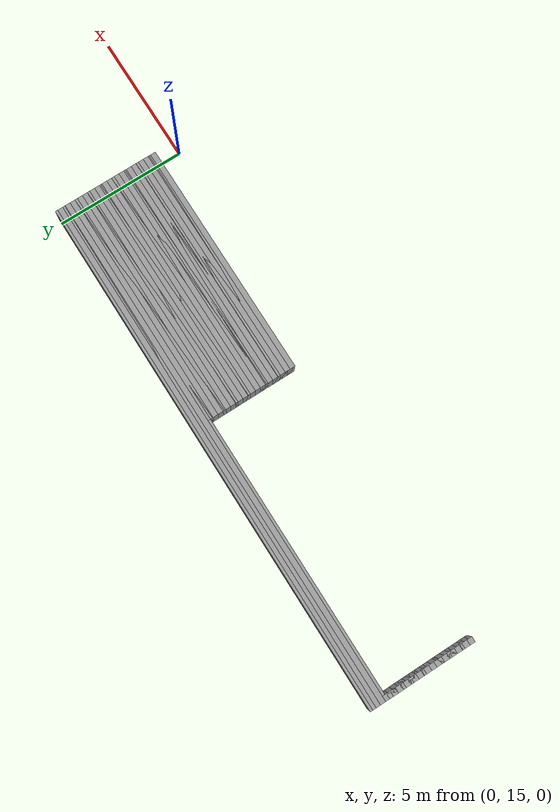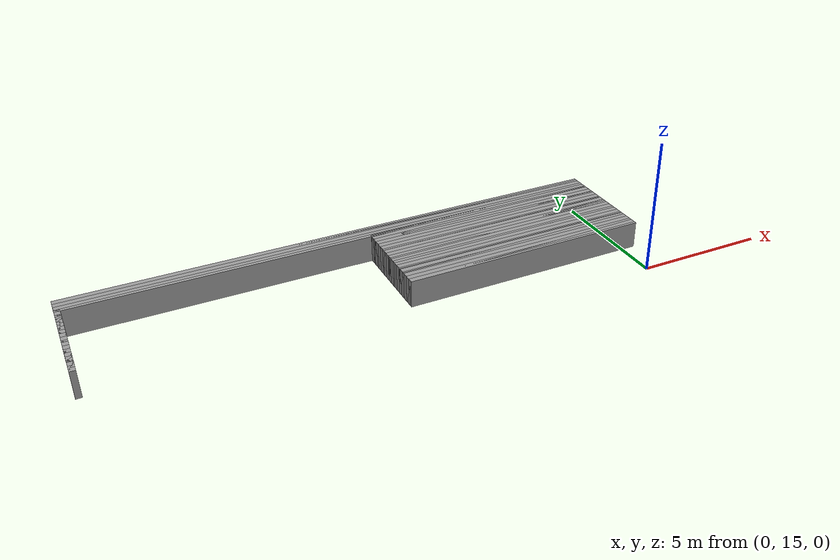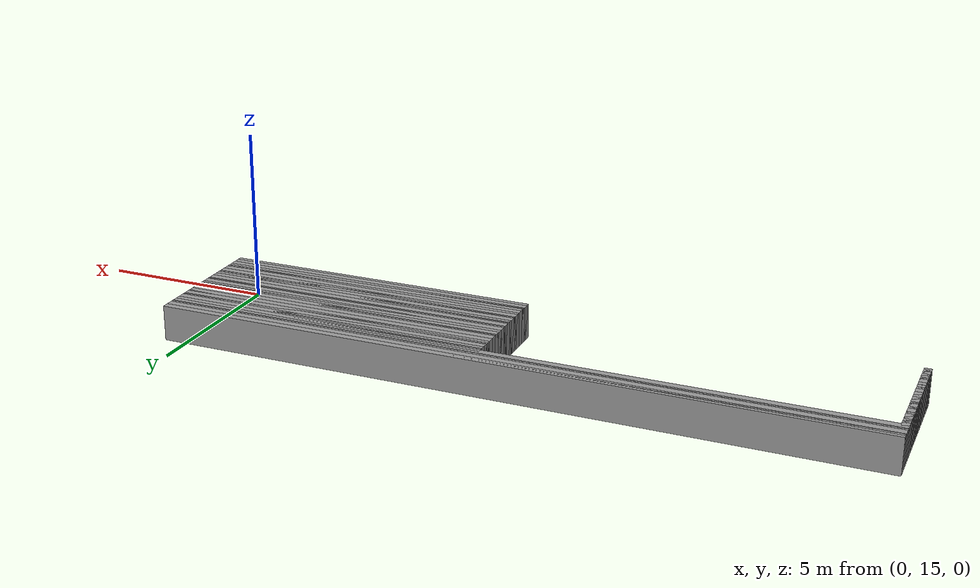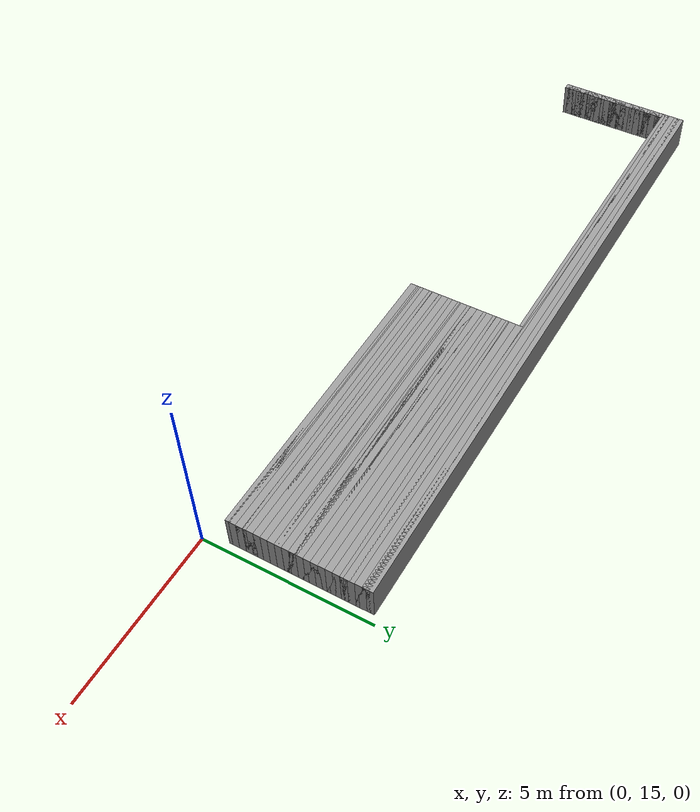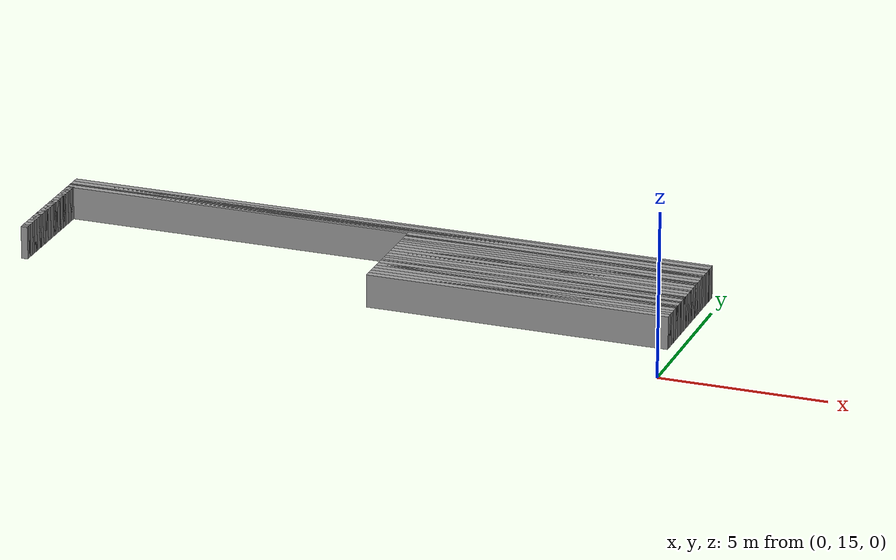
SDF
<sdf version="1.6">
 <world name="GridMap">
  <model name="GridMap">
   <link name="Wall_(45.5,160.0)">
    <collision name="Wall_(45.5,160.0)_Collision">
     <geometry><box><size>9.1 0.2 1.0</size></box></geometry>
     <pose>-4.55 16.0 0.5 0 -0 0</pose>
    </collision>
    <visual name="Wall_(45.5,160.0)_Visual">
     <geometry><box><size>9.1 0.2 1.0</size></box></geometry>
     <pose>-4.55 16.0 0.5 0 -0 0</pose>
     <material>
      <script><uri>file://media/materials/scripts/gazebo.material</uri><name>Gazebo/Grey</name></script>
      <ambient>1 1 1 1</ambient>
     </material>
     <meta><layer>0</layer></meta>
    </visual>
    <pose>0 0 0.5 0 -0 0</pose>
   </link>
   <link name="Wall_(198.0,160.0)">
    <collision name="Wall_(198.0,160.0)_Collision">
     <geometry><box><size>0.2 0.2 1.0</size></box></geometry>
     <pose>-19.8 16.0 0.5 0 -0 0</pose>
    </collision>
    <visual name="Wall_(198.0,160.0)_Visual">
     <geometry><box><size>0.2 0.2 1.0</size></box></geometry>
     <pose>-19.8 16.0 0.5 0 -0 0</pose>
     <material>
      <script><uri>file://media/materials/scripts/gazebo.material</uri><name>Gazebo/Grey</name></script>
      <ambient>1 1 1 1</ambient>
     </material>
     <meta><layer>0</layer></meta>
    </visual>
    <pose>0 0 0.5 0 -0 0</pose>
   </link>
   <link name="Wall_(45.5,161.0)">
    <collision name="Wall_(45.5,161.0)_Collision">
     <geometry><box><size>9.1 0.2 1.0</size></box></geometry>
     <pose>-4.55 16.1 0.5 0 -0 0</pose>
    </collision>
    <visual name="Wall_(45.5,161.0)_Visual">
     <geometry><box><size>9.1 0.2 1.0</size></box></geometry>
     <pose>-4.55 16.1 0.5 0 -0 0</pose>
     <material>
      <script><uri>file://media/materials/scripts/gazebo.material</uri><name>Gazebo/Grey</name></script>
      <ambient>1 1 1 1</ambient>
     </material>
     <meta><layer>0</layer></meta>
    </visual>
    <pose>0 0 0.5 0 -0 0</pose>
   </link>
   <link name="Wall_(198.0,161.0)">
    <collision name="Wall_(198.0,161.0)_Collision">
     <geometry><box><size>0.2 0.2 1.0</size></box></geometry>
     <pose>-19.8 16.1 0.5 0 -0 0</pose>
    </collision>
    <visual name="Wall_(198.0,161.0)_Visual">
     <geometry><box><size>0.2 0.2 1.0</size></box></geometry>
     <pose>-19.8 16.1 0.5 0 -0 0</pose>
     <material>
      <script><uri>file://media/materials/scripts/gazebo.material</uri><name>Gazebo/Grey</name></script>
      <ambient>1 1 1 1</ambient>
     </material>
     <meta><layer>0</layer></meta>
    </visual>
    <pose>0 0 0.5 0 -0 0</pose>
   </link>
   <link name="Wall_(45.5,162.0)">
    <collision name="Wall_(45.5,162.0)_Collision">
     <geometry><box><size>9.1 0.2 1.0</size></box></geometry>
     <pose>-4.55 16.2 0.5 0 -0 0</pose>
    </collision>
    <visual name="Wall_(45.5,162.0)_Visual">
     <geometry><box><size>9.1 0.2 1.0</size></box></geometry>
     <pose>-4.55 16.2 0.5 0 -0 0</pose>
     <material>
      <script><uri>file://media/materials/scripts/gazebo.material</uri><name>Gazebo/Grey</name></script>
      <ambient>1 1 1 1</ambient>
     </material>
     <meta><layer>0</layer></meta>
    </visual>
    <pose>0 0 0.5 0 -0 0</pose>
   </link>
   <link name="Wall_(198.0,162.0)">
    <collision name="Wall_(198.0,162.0)_Collision">
     <geometry><box><size>0.2 0.2 1.0</size></box></geometry>
     <pose>-19.8 16.2 0.5 0 -0 0</pose>
    </collision>
    <visual name="Wall_(198.0,162.0)_Visual">
     <geometry><box><size>0.2 0.2 1.0</size></box></geometry>
     <pose>-19.8 16.2 0.5 0 -0 0</pose>
     <material>
      <script><uri>file://media/materials/scripts/gazebo.material</uri><name>Gazebo/Grey</name></script>
      <ambient>1 1 1 1</ambient>
     </material>
     <meta><layer>0</layer></meta>
    </visual>
    <pose>0 0 0.5 0 -0 0</pose>
   </link>
   <link name="Wall_(45.5,163.0)">
    <collision name="Wall_(45.5,163.0)_Collision">
     <geometry><box><size>9.1 0.2 1.0</size></box></geometry>
     <pose>-4.55 16.3 0.5 0 -0 0</pose>
    </collision>
    <visual name="Wall_(45.5,163.0)_Visual">
     <geometry><box><size>9.1 0.2 1.0</size></box></geometry>
     <pose>-4.55 16.3 0.5 0 -0 0</pose>
     <material>
      <script><uri>file://media/materials/scripts/gazebo.material</uri><name>Gazebo/Grey</name></script>
      <ambient>1 1 1 1</ambient>
     </material>
     <meta><layer>0</layer></meta>
    </visual>
    <pose>0 0 0.5 0 -0 0</pose>
   </link>
   <link name="Wall_(198.0,163.0)">
    <collision name="Wall_(198.0,163.0)_Collision">
     <geometry><box><size>0.2 0.2 1.0</size></box></geometry>
     <pose>-19.8 16.3 0.5 0 -0 0</pose>
    </collision>
    <visual name="Wall_(198.0,163.0)_Visual">
     <geometry><box><size>0.2 0.2 1.0</size></box></geometry>
     <pose>-19.8 16.3 0.5 0 -0 0</pose>
     <material>
      <script><uri>file://media/materials/scripts/gazebo.material</uri><name>Gazebo/Grey</name></script>
      <ambient>1 1 1 1</ambient>
     </material>
     <meta><layer>0</layer></meta>
    </visual>
    <pose>0 0 0.5 0 -0 0</pose>
   </link>
   <link name="Wall_(45.5,164.0)">
    <collision name="Wall_(45.5,164.0)_Collision">
     <geometry><box><size>9.1 0.2 1.0</size></box></geometry>
     <pose>-4.55 16.4 0.5 0 -0 0</pose>
    </collision>
    <visual name="Wall_(45.5,164.0)_Visual">
     <geometry><box><size>9.1 0.2 1.0</size></box></geometry>
     <pose>-4.55 16.4 0.5 0 -0 0</pose>
     <material>
      <script><uri>file://media/materials/scripts/gazebo.material</uri><name>Gazebo/Grey</name></script>
      <ambient>1 1 1 1</ambient>
     </material>
     <meta><layer>0</layer></meta>
    </visual>
    <pose>0 0 0.5 0 -0 0</pose>
   </link>
   <link name="Wall_(198.0,164.0)">
    <collision name="Wall_(198.0,164.0)_Collision">
     <geometry><box><size>0.2 0.2 1.0</size></box></geometry>
     <pose>-19.8 16.4 0.5 0 -0 0</pose>
    </collision>
    <visual name="Wall_(198.0,164.0)_Visual">
     <geometry><box><size>0.2 0.2 1.0</size></box></geometry>
     <pose>-19.8 16.4 0.5 0 -0 0</pose>
     <material>
      <script><uri>file://media/materials/scripts/gazebo.material</uri><name>Gazebo/Grey</name></script>
      <ambient>1 1 1 1</ambient>
     </material>
     <meta><layer>0</layer></meta>
    </visual>
    <pose>0 0 0.5 0 -0 0</pose>
   </link>
   <link name="Wall_(45.5,165.0)">
    <collision name="Wall_(45.5,165.0)_Collision">
     <geometry><box><size>9.1 0.2 1.0</size></box></geometry>
     <pose>-4.55 16.5 0.5 0 -0 0</pose>
    </collision>
    <visual name="Wall_(45.5,165.0)_Visual">
     <geometry><box><size>9.1 0.2 1.0</size></box></geometry>
     <pose>-4.55 16.5 0.5 0 -0 0</pose>
     <material>
      <script><uri>file://media/materials/scripts/gazebo.material</uri><name>Gazebo/Grey</name></script>
      <ambient>1 1 1 1</ambient>
     </material>
     <meta><layer>0</layer></meta>
    </visual>
    <pose>0 0 0.5 0 -0 0</pose>
   </link>
   <link name="Wall_(198.0,165.0)">
    <collision name="Wall_(198.0,165.0)_Collision">
     <geometry><box><size>0.2 0.2 1.0</size></box></geometry>
     <pose>-19.8 16.5 0.5 0 -0 0</pose>
    </collision>
    <visual name="Wall_(198.0,165.0)_Visual">
     <geometry><box><size>0.2 0.2 1.0</size></box></geometry>
     <pose>-19.8 16.5 0.5 0 -0 0</pose>
     <material>
      <script><uri>file://media/materials/scripts/gazebo.material</uri><name>Gazebo/Grey</name></script>
      <ambient>1 1 1 1</ambient>
     </material>
     <meta><layer>0</layer></meta>
    </visual>
    <pose>0 0 0.5 0 -0 0</pose>
   </link>
   <link name="Wall_(45.5,166.0)">
    <collision name="Wall_(45.5,166.0)_Collision">
     <geometry><box><size>9.1 0.2 1.0</size></box></geometry>
     <pose>-4.55 16.6 0.5 0 -0 0</pose>
    </collision>
    <visual name="Wall_(45.5,166.0)_Visual">
     <geometry><box><size>9.1 0.2 1.0</size></box></geometry>
     <pose>-4.55 16.6 0.5 0 -0 0</pose>
     <material>
      <script><uri>file://media/materials/scripts/gazebo.material</uri><name>Gazebo/Grey</name></script>
      <ambient>1 1 1 1</ambient>
     </material>
     <meta><layer>0</layer></meta>
    </visual>
    <pose>0 0 0.5 0 -0 0</pose>
   </link>
   <link name="Wall_(198.0,166.0)">
    <collision name="Wall_(198.0,166.0)_Collision">
     <geometry><box><size>0.2 0.2 1.0</size></box></geometry>
     <pose>-19.8 16.6 0.5 0 -0 0</pose>
    </collision>
    <visual name="Wall_(198.0,166.0)_Visual">
     <geometry><box><size>0.2 0.2 1.0</size></box></geometry>
     <pose>-19.8 16.6 0.5 0 -0 0</pose>
     <material>
      <script><uri>file://media/materials/scripts/gazebo.material</uri><name>Gazebo/Grey</name></script>
      <ambient>1 1 1 1</ambient>
     </material>
     <meta><layer>0</layer></meta>
    </visual>
    <pose>0 0 0.5 0 -0 0</pose>
   </link>
   <link name="Wall_(45.5,167.0)">
    <collision name="Wall_(45.5,167.0)_Collision">
     <geometry><box><size>9.1 0.2 1.0</size></box></geometry>
     <pose>-4.55 16.7 0.5 0 -0 0</pose>
    </collision>
    <visual name="Wall_(45.5,167.0)_Visual">
     <geometry><box><size>9.1 0.2 1.0</size></box></geometry>
     <pose>-4.55 16.7 0.5 0 -0 0</pose>
     <material>
      <script><uri>file://media/materials/scripts/gazebo.material</uri><name>Gazebo/Grey</name></script>
      <ambient>1 1 1 1</ambient>
     </material>
     <meta><layer>0</layer></meta>
    </visual>
    <pose>0 0 0.5 0 -0 0</pose>
   </link>
   <link name="Wall_(198.0,167.0)">
    <collision name="Wall_(198.0,167.0)_Collision">
     <geometry><box><size>0.2 0.2 1.0</size></box></geometry>
     <pose>-19.8 16.7 0.5 0 -0 0</pose>
    </collision>
    <visual name="Wall_(198.0,167.0)_Visual">
     <geometry><box><size>0.2 0.2 1.0</size></box></geometry>
     <pose>-19.8 16.7 0.5 0 -0 0</pose>
     <material>
      <script><uri>file://media/materials/scripts/gazebo.material</uri><name>Gazebo/Grey</name></script>
      <ambient>1 1 1 1</ambient>
     </material>
     <meta><layer>0</layer></meta>
    </visual>
    <pose>0 0 0.5 0 -0 0</pose>
   </link>
   <link name="Wall_(45.5,168.0)">
    <collision name="Wall_(45.5,168.0)_Collision">
     <geometry><box><size>9.1 0.2 1.0</size></box></geometry>
     <pose>-4.55 16.8 0.5 0 -0 0</pose>
    </collision>
    <visual name="Wall_(45.5,168.0)_Visual">
     <geometry><box><size>9.1 0.2 1.0</size></box></geometry>
     <pose>-4.55 16.8 0.5 0 -0 0</pose>
     <material>
      <script><uri>file://media/materials/scripts/gazebo.material</uri><name>Gazebo/Grey</name></script>
      <ambient>1 1 1 1</ambient>
     </material>
     <meta><layer>0</layer></meta>
    </visual>
    <pose>0 0 0.5 0 -0 0</pose>
   </link>
   <link name="Wall_(198.0,168.0)">
    <collision name="Wall_(198.0,168.0)_Collision">
     <geometry><box><size>0.2 0.2 1.0</size></box></geometry>
     <pose>-19.8 16.8 0.5 0 -0 0</pose>
    </collision>
    <visual name="Wall_(198.0,168.0)_Visual">
     <geometry><box><size>0.2 0.2 1.0</size></box></geometry>
     <pose>-19.8 16.8 0.5 0 -0 0</pose>
     <material>
      <script><uri>file://media/materials/scripts/gazebo.material</uri><name>Gazebo/Grey</name></script>
      <ambient>1 1 1 1</ambient>
     </material>
     <meta><layer>0</layer></meta>
    </visual>
    <pose>0 0 0.5 0 -0 0</pose>
   </link>
   <link name="Wall_(45.5,169.0)">
    <collision name="Wall_(45.5,169.0)_Collision">
     <geometry><box><size>9.1 0.2 1.0</size></box></geometry>
     <pose>-4.55 16.9 0.5 0 -0 0</pose>
    </collision>
    <visual name="Wall_(45.5,169.0)_Visual">
     <geometry><box><size>9.1 0.2 1.0</size></box></geometry>
     <pose>-4.55 16.9 0.5 0 -0 0</pose>
     <material>
      <script><uri>file://media/materials/scripts/gazebo.material</uri><name>Gazebo/Grey</name></script>
      <ambient>1 1 1 1</ambient>
     </material>
     <meta><layer>0</layer></meta>
    </visual>
    <pose>0 0 0.5 0 -0 0</pose>
   </link>
   <link name="Wall_(198.0,169.0)">
    <collision name="Wall_(198.0,169.0)_Collision">
     <geometry><box><size>0.2 0.2 1.0</size></box></geometry>
     <pose>-19.8 16.9 0.5 0 -0 0</pose>
    </collision>
    <visual name="Wall_(198.0,169.0)_Visual">
     <geometry><box><size>0.2 0.2 1.0</size></box></geometry>
     <pose>-19.8 16.9 0.5 0 -0 0</pose>
     <material>
      <script><uri>file://media/materials/scripts/gazebo.material</uri><name>Gazebo/Grey</name></script>
      <ambient>1 1 1 1</ambient>
     </material>
     <meta><layer>0</layer></meta>
    </visual>
    <pose>0 0 0.5 0 -0 0</pose>
   </link>
   <link name="Wall_(45.5,170.0)">
    <collision name="Wall_(45.5,170.0)_Collision">
     <geometry><box><size>9.1 0.2 1.0</size></box></geometry>
     <pose>-4.55 17.0 0.5 0 -0 0</pose>
    </collision>
    <visual name="Wall_(45.5,170.0)_Visual">
     <geometry><box><size>9.1 0.2 1.0</size></box></geometry>
     <pose>-4.55 17.0 0.5 0 -0 0</pose>
     <material>
      <script><uri>file://media/materials/scripts/gazebo.material</uri><name>Gazebo/Grey</name></script>
      <ambient>1 1 1 1</ambient>
     </material>
     <meta><layer>0</layer></meta>
    </visual>
    <pose>0 0 0.5 0 -0 0</pose>
   </link>
   <link name="Wall_(198.0,170.0)">
    <collision name="Wall_(198.0,170.0)_Collision">
     <geometry><box><size>0.2 0.2 1.0</size></box></geometry>
     <pose>-19.8 17.0 0.5 0 -0 0</pose>
    </collision>
    <visual name="Wall_(198.0,170.0)_Visual">
     <geometry><box><size>0.2 0.2 1.0</size></box></geometry>
     <pose>-19.8 17.0 0.5 0 -0 0</pose>
     <material>
      <script><uri>file://media/materials/scripts/gazebo.material</uri><name>Gazebo/Grey</name></script>
      <ambient>1 1 1 1</ambient>
     </material>
     <meta><layer>0</layer></meta>
    </visual>
    <pose>0 0 0.5 0 -0 0</pose>
   </link>
   <link name="Wall_(45.5,171.0)">
    <collision name="Wall_(45.5,171.0)_Collision">
     <geometry><box><size>9.1 0.2 1.0</size></box></geometry>
     <pose>-4.55 17.1 0.5 0 -0 0</pose>
    </collision>
    <visual name="Wall_(45.5,171.0)_Visual">
     <geometry><box><size>9.1 0.2 1.0</size></box></geometry>
     <pose>-4.55 17.1 0.5 0 -0 0</pose>
     <material>
      <script><uri>file://media/materials/scripts/gazebo.material</uri><name>Gazebo/Grey</name></script>
      <ambient>1 1 1 1</ambient>
     </material>
     <meta><layer>0</layer></meta>
    </visual>
    <pose>0 0 0.5 0 -0 0</pose>
   </link>
   <link name="Wall_(198.0,171.0)">
    <collision name="Wall_(198.0,171.0)_Collision">
     <geometry><box><size>0.2 0.2 1.0</size></box></geometry>
     <pose>-19.8 17.1 0.5 0 -0 0</pose>
    </collision>
    <visual name="Wall_(198.0,171.0)_Visual">
     <geometry><box><size>0.2 0.2 1.0</size></box></geometry>
     <pose>-19.8 17.1 0.5 0 -0 0</pose>
     <material>
      <script><uri>file://media/materials/scripts/gazebo.material</uri><name>Gazebo/Grey</name></script>
      <ambient>1 1 1 1</ambient>
     </material>
     <meta><layer>0</layer></meta>
    </visual>
    <pose>0 0 0.5 0 -0 0</pose>
   </link>
   <link name="Wall_(45.5,172.0)">
    <collision name="Wall_(45.5,172.0)_Collision">
     <geometry><box><size>9.1 0.2 1.0</size></box></geometry>
     <pose>-4.55 17.2 0.5 0 -0 0</pose>
    </collision>
    <visual name="Wall_(45.5,172.0)_Visual">
     <geometry><box><size>9.1 0.2 1.0</size></box></geometry>
     <pose>-4.55 17.2 0.5 0 -0 0</pose>
     <material>
      <script><uri>file://media/materials/scripts/gazebo.material</uri><name>Gazebo/Grey</name></script>
      <ambient>1 1 1 1</ambient>
     </material>
     <meta><layer>0</layer></meta>
    </visual>
    <pose>0 0 0.5 0 -0 0</pose>
   </link>
   <link name="Wall_(198.0,172.0)">
    <collision name="Wall_(198.0,172.0)_Collision">
     <geometry><box><size>0.2 0.2 1.0</size></box></geometry>
     <pose>-19.8 17.2 0.5 0 -0 0</pose>
    </collision>
    <visual name="Wall_(198.0,172.0)_Visual">
     <geometry><box><size>0.2 0.2 1.0</size></box></geometry>
     <pose>-19.8 17.2 0.5 0 -0 0</pose>
     <material>
      <script><uri>file://media/materials/scripts/gazebo.material</uri><name>Gazebo/Grey</name></script>
      <ambient>1 1 1 1</ambient>
     </material>
     <meta><layer>0</layer></meta>
    </visual>
    <pose>0 0 0.5 0 -0 0</pose>
   </link>
   <link name="Wall_(45.5,173.0)">
    <collision name="Wall_(45.5,173.0)_Collision">
     <geometry><box><size>9.1 0.2 1.0</size></box></geometry>
     <pose>-4.55 17.3 0.5 0 -0 0</pose>
    </collision>
    <visual name="Wall_(45.5,173.0)_Visual">
     <geometry><box><size>9.1 0.2 1.0</size></box></geometry>
     <pose>-4.55 17.3 0.5 0 -0 0</pose>
     <material>
      <script><uri>file://media/materials/scripts/gazebo.material</uri><name>Gazebo/Grey</name></script>
      <ambient>1 1 1 1</ambient>
     </material>
     <meta><layer>0</layer></meta>
    </visual>
    <pose>0 0 0.5 0 -0 0</pose>
   </link>
   <link name="Wall_(198.0,173.0)">
    <collision name="Wall_(198.0,173.0)_Collision">
     <geometry><box><size>0.2 0.2 1.0</size></box></geometry>
     <pose>-19.8 17.3 0.5 0 -0 0</pose>
    </collision>
    <visual name="Wall_(198.0,173.0)_Visual">
     <geometry><box><size>0.2 0.2 1.0</size></box></geometry>
     <pose>-19.8 17.3 0.5 0 -0 0</pose>
     <material>
      <script><uri>file://media/materials/scripts/gazebo.material</uri><name>Gazebo/Grey</name></script>
      <ambient>1 1 1 1</ambient>
     </material>
     <meta><layer>0</layer></meta>
    </visual>
    <pose>0 0 0.5 0 -0 0</pose>
   </link>
   <link name="Wall_(45.5,174.0)">
    <collision name="Wall_(45.5,174.0)_Collision">
     <geometry><box><size>9.1 0.2 1.0</size></box></geometry>
     <pose>-4.55 17.4 0.5 0 -0 0</pose>
    </collision>
    <visual name="Wall_(45.5,174.0)_Visual">
     <geometry><box><size>9.1 0.2 1.0</size></box></geometry>
     <pose>-4.55 17.4 0.5 0 -0 0</pose>
     <material>
      <script><uri>file://media/materials/scripts/gazebo.material</uri><name>Gazebo/Grey</name></script>
      <ambient>1 1 1 1</ambient>
     </material>
     <meta><layer>0</layer></meta>
    </visual>
    <pose>0 0 0.5 0 -0 0</pose>
   </link>
   <link name="Wall_(198.0,174.0)">
    <collision name="Wall_(198.0,174.0)_Collision">
     <geometry><box><size>0.2 0.2 1.0</size></box></geometry>
     <pose>-19.8 17.4 0.5 0 -0 0</pose>
    </collision>
    <visual name="Wall_(198.0,174.0)_Visual">
     <geometry><box><size>0.2 0.2 1.0</size></box></geometry>
     <pose>-19.8 17.4 0.5 0 -0 0</pose>
     <material>
      <script><uri>file://media/materials/scripts/gazebo.material</uri><name>Gazebo/Grey</name></script>
      <ambient>1 1 1 1</ambient>
     </material>
     <meta><layer>0</layer></meta>
    </visual>
    <pose>0 0 0.5 0 -0 0</pose>
   </link>
   <link name="Wall_(45.5,175.0)">
    <collision name="Wall_(45.5,175.0)_Collision">
     <geometry><box><size>9.1 0.2 1.0</size></box></geometry>
     <pose>-4.55 17.5 0.5 0 -0 0</pose>
    </collision>
    <visual name="Wall_(45.5,175.0)_Visual">
     <geometry><box><size>9.1 0.2 1.0</size></box></geometry>
     <pose>-4.55 17.5 0.5 0 -0 0</pose>
     <material>
      <script><uri>file://media/materials/scripts/gazebo.material</uri><name>Gazebo/Grey</name></script>
      <ambient>1 1 1 1</ambient>
     </material>
     <meta><layer>0</layer></meta>
    </visual>
    <pose>0 0 0.5 0 -0 0</pose>
   </link>
   <link name="Wall_(198.0,175.0)">
    <collision name="Wall_(198.0,175.0)_Collision">
     <geometry><box><size>0.2 0.2 1.0</size></box></geometry>
     <pose>-19.8 17.5 0.5 0 -0 0</pose>
    </collision>
    <visual name="Wall_(198.0,175.0)_Visual">
     <geometry><box><size>0.2 0.2 1.0</size></box></geometry>
     <pose>-19.8 17.5 0.5 0 -0 0</pose>
     <material>
      <script><uri>file://media/materials/scripts/gazebo.material</uri><name>Gazebo/Grey</name></script>
      <ambient>1 1 1 1</ambient>
     </material>
     <meta><layer>0</layer></meta>
    </visual>
    <pose>0 0 0.5 0 -0 0</pose>
   </link>
   <link name="Wall_(45.5,176.0)">
    <collision name="Wall_(45.5,176.0)_Collision">
     <geometry><box><size>9.1 0.2 1.0</size></box></geometry>
     <pose>-4.55 17.6 0.5 0 -0 0</pose>
    </collision>
    <visual name="Wall_(45.5,176.0)_Visual">
     <geometry><box><size>9.1 0.2 1.0</size></box></geometry>
     <pose>-4.55 17.6 0.5 0 -0 0</pose>
     <material>
      <script><uri>file://media/materials/scripts/gazebo.material</uri><name>Gazebo/Grey</name></script>
      <ambient>1 1 1 1</ambient>
     </material>
     <meta><layer>0</layer></meta>
    </visual>
    <pose>0 0 0.5 0 -0 0</pose>
   </link>
   <link name="Wall_(198.0,176.0)">
    <collision name="Wall_(198.0,176.0)_Collision">
     <geometry><box><size>0.2 0.2 1.0</size></box></geometry>
     <pose>-19.8 17.6 0.5 0 -0 0</pose>
    </collision>
    <visual name="Wall_(198.0,176.0)_Visual">
     <geometry><box><size>0.2 0.2 1.0</size></box></geometry>
     <pose>-19.8 17.6 0.5 0 -0 0</pose>
     <material>
      <script><uri>file://media/materials/scripts/gazebo.material</uri><name>Gazebo/Grey</name></script>
      <ambient>1 1 1 1</ambient>
     </material>
     <meta><layer>0</layer></meta>
    </visual>
    <pose>0 0 0.5 0 -0 0</pose>
   </link>
   <link name="Wall_(45.5,177.0)">
    <collision name="Wall_(45.5,177.0)_Collision">
     <geometry><box><size>9.1 0.2 1.0</size></box></geometry>
     <pose>-4.55 17.7 0.5 0 -0 0</pose>
    </collision>
    <visual name="Wall_(45.5,177.0)_Visual">
     <geometry><box><size>9.1 0.2 1.0</size></box></geometry>
     <pose>-4.55 17.7 0.5 0 -0 0</pose>
     <material>
      <script><uri>file://media/materials/scripts/gazebo.material</uri><name>Gazebo/Grey</name></script>
      <ambient>1 1 1 1</ambient>
     </material>
     <meta><layer>0</layer></meta>
    </visual>
    <pose>0 0 0.5 0 -0 0</pose>
   </link>
   <link name="Wall_(198.0,177.0)">
    <collision name="Wall_(198.0,177.0)_Collision">
     <geometry><box><size>0.2 0.2 1.0</size></box></geometry>
     <pose>-19.8 17.7 0.5 0 -0 0</pose>
    </collision>
    <visual name="Wall_(198.0,177.0)_Visual">
     <geometry><box><size>0.2 0.2 1.0</size></box></geometry>
     <pose>-19.8 17.7 0.5 0 -0 0</pose>
     <material>
      <script><uri>file://media/materials/scripts/gazebo.material</uri><name>Gazebo/Grey</name></script>
      <ambient>1 1 1 1</ambient>
     </material>
     <meta><layer>0</layer></meta>
    </visual>
    <pose>0 0 0.5 0 -0 0</pose>
   </link>
   <link name="Wall_(45.5,178.0)">
    <collision name="Wall_(45.5,178.0)_Collision">
     <geometry><box><size>9.1 0.2 1.0</size></box></geometry>
     <pose>-4.55 17.8 0.5 0 -0 0</pose>
    </collision>
    <visual name="Wall_(45.5,178.0)_Visual">
     <geometry><box><size>9.1 0.2 1.0</size></box></geometry>
     <pose>-4.55 17.8 0.5 0 -0 0</pose>
     <material>
      <script><uri>file://media/materials/scripts/gazebo.material</uri><name>Gazebo/Grey</name></script>
      <ambient>1 1 1 1</ambient>
     </material>
     <meta><layer>0</layer></meta>
    </visual>
    <pose>0 0 0.5 0 -0 0</pose>
   </link>
   <link name="Wall_(198.0,178.0)">
    <collision name="Wall_(198.0,178.0)_Collision">
     <geometry><box><size>0.2 0.2 1.0</size></box></geometry>
     <pose>-19.8 17.8 0.5 0 -0 0</pose>
    </collision>
    <visual name="Wall_(198.0,178.0)_Visual">
     <geometry><box><size>0.2 0.2 1.0</size></box></geometry>
     <pose>-19.8 17.8 0.5 0 -0 0</pose>
     <material>
      <script><uri>file://media/materials/scripts/gazebo.material</uri><name>Gazebo/Grey</name></script>
      <ambient>1 1 1 1</ambient>
     </material>
     <meta><layer>0</layer></meta>
    </visual>
    <pose>0 0 0.5 0 -0 0</pose>
   </link>
   <link name="Wall_(45.5,179.0)">
    <collision name="Wall_(45.5,179.0)_Collision">
     <geometry><box><size>9.1 0.2 1.0</size></box></geometry>
     <pose>-4.55 17.9 0.5 0 -0 0</pose>
    </collision>
    <visual name="Wall_(45.5,179.0)_Visual">
     <geometry><box><size>9.1 0.2 1.0</size></box></geometry>
     <pose>-4.55 17.9 0.5 0 -0 0</pose>
     <material>
      <script><uri>file://media/materials/scripts/gazebo.material</uri><name>Gazebo/Grey</name></script>
      <ambient>1 1 1 1</ambient>
     </material>
     <meta><layer>0</layer></meta>
    </visual>
    <pose>0 0 0.5 0 -0 0</pose>
   </link>
   <link name="Wall_(198.0,179.0)">
    <collision name="Wall_(198.0,179.0)_Collision">
     <geometry><box><size>0.2 0.2 1.0</size></box></geometry>
     <pose>-19.8 17.9 0.5 0 -0 0</pose>
    </collision>
    <visual name="Wall_(198.0,179.0)_Visual">
     <geometry><box><size>0.2 0.2 1.0</size></box></geometry>
     <pose>-19.8 17.9 0.5 0 -0 0</pose>
     <material>
      <script><uri>file://media/materials/scripts/gazebo.material</uri><name>Gazebo/Grey</name></script>
      <ambient>1 1 1 1</ambient>
     </material>
     <meta><layer>0</layer></meta>
    </visual>
    <pose>0 0 0.5 0 -0 0</pose>
   </link>
   <link name="Wall_(45.5,180.0)">
    <collision name="Wall_(45.5,180.0)_Collision">
     <geometry><box><size>9.1 0.2 1.0</size></box></geometry>
     <pose>-4.55 18.0 0.5 0 -0 0</pose>
    </collision>
    <visual name="Wall_(45.5,180.0)_Visual">
     <geometry><box><size>9.1 0.2 1.0</size></box></geometry>
     <pose>-4.55 18.0 0.5 0 -0 0</pose>
     <material>
      <script><uri>file://media/materials/scripts/gazebo.material</uri><name>Gazebo/Grey</name></script>
      <ambient>1 1 1 1</ambient>
     </material>
     <meta><layer>0</layer></meta>
    </visual>
    <pose>0 0 0.5 0 -0 0</pose>
   </link>
   <link name="Wall_(198.0,180.0)">
    <collision name="Wall_(198.0,180.0)_Collision">
     <geometry><box><size>0.2 0.2 1.0</size></box></geometry>
     <pose>-19.8 18.0 0.5 0 -0 0</pose>
    </collision>
    <visual name="Wall_(198.0,180.0)_Visual">
     <geometry><box><size>0.2 0.2 1.0</size></box></geometry>
     <pose>-19.8 18.0 0.5 0 -0 0</pose>
     <material>
      <script><uri>file://media/materials/scripts/gazebo.material</uri><name>Gazebo/Grey</name></script>
      <ambient>1 1 1 1</ambient>
     </material>
     <meta><layer>0</layer></meta>
    </visual>
    <pose>0 0 0.5 0 -0 0</pose>
   </link>
   <link name="Wall_(45.5,181.0)">
    <collision name="Wall_(45.5,181.0)_Collision">
     <geometry><box><size>9.1 0.2 1.0</size></box></geometry>
     <pose>-4.55 18.1 0.5 0 -0 0</pose>
    </collision>
    <visual name="Wall_(45.5,181.0)_Visual">
     <geometry><box><size>9.1 0.2 1.0</size></box></geometry>
     <pose>-4.55 18.1 0.5 0 -0 0</pose>
     <material>
      <script><uri>file://media/materials/scripts/gazebo.material</uri><name>Gazebo/Grey</name></script>
      <ambient>1 1 1 1</ambient>
     </material>
     <meta><layer>0</layer></meta>
    </visual>
    <pose>0 0 0.5 0 -0 0</pose>
   </link>
   <link name="Wall_(198.0,181.0)">
    <collision name="Wall_(198.0,181.0)_Collision">
     <geometry><box><size>0.2 0.2 1.0</size></box></geometry>
     <pose>-19.8 18.1 0.5 0 -0 0</pose>
    </collision>
    <visual name="Wall_(198.0,181.0)_Visual">
     <geometry><box><size>0.2 0.2 1.0</size></box></geometry>
     <pose>-19.8 18.1 0.5 0 -0 0</pose>
     <material>
      <script><uri>file://media/materials/scripts/gazebo.material</uri><name>Gazebo/Grey</name></script>
      <ambient>1 1 1 1</ambient>
     </material>
     <meta><layer>0</layer></meta>
    </visual>
    <pose>0 0 0.5 0 -0 0</pose>
   </link>
   <link name="Wall_(45.5,182.0)">
    <collision name="Wall_(45.5,182.0)_Collision">
     <geometry><box><size>9.1 0.2 1.0</size></box></geometry>
     <pose>-4.55 18.2 0.5 0 -0 0</pose>
    </collision>
    <visual name="Wall_(45.5,182.0)_Visual">
     <geometry><box><size>9.1 0.2 1.0</size></box></geometry>
     <pose>-4.55 18.2 0.5 0 -0 0</pose>
     <material>
      <script><uri>file://media/materials/scripts/gazebo.material</uri><name>Gazebo/Grey</name></script>
      <ambient>1 1 1 1</ambient>
     </material>
     <meta><layer>0</layer></meta>
    </visual>
    <pose>0 0 0.5 0 -0 0</pose>
   </link>
   <link name="Wall_(198.0,182.0)">
    <collision name="Wall_(198.0,182.0)_Collision">
     <geometry><box><size>0.2 0.2 1.0</size></box></geometry>
     <pose>-19.8 18.2 0.5 0 -0 0</pose>
    </collision>
    <visual name="Wall_(198.0,182.0)_Visual">
     <geometry><box><size>0.2 0.2 1.0</size></box></geometry>
     <pose>-19.8 18.2 0.5 0 -0 0</pose>
     <material>
      <script><uri>file://media/materials/scripts/gazebo.material</uri><name>Gazebo/Grey</name></script>
      <ambient>1 1 1 1</ambient>
     </material>
     <meta><layer>0</layer></meta>
    </visual>
    <pose>0 0 0.5 0 -0 0</pose>
   </link>
   <link name="Wall_(45.5,183.0)">
    <collision name="Wall_(45.5,183.0)_Collision">
     <geometry><box><size>9.1 0.2 1.0</size></box></geometry>
     <pose>-4.55 18.3 0.5 0 -0 0</pose>
    </collision>
    <visual name="Wall_(45.5,183.0)_Visual">
     <geometry><box><size>9.1 0.2 1.0</size></box></geometry>
     <pose>-4.55 18.3 0.5 0 -0 0</pose>
     <material>
      <script><uri>file://media/materials/scripts/gazebo.material</uri><name>Gazebo/Grey</name></script>
      <ambient>1 1 1 1</ambient>
     </material>
     <meta><layer>0</layer></meta>
    </visual>
    <pose>0 0 0.5 0 -0 0</pose>
   </link>
   <link name="Wall_(198.0,183.0)">
    <collision name="Wall_(198.0,183.0)_Collision">
     <geometry><box><size>0.2 0.2 1.0</size></box></geometry>
     <pose>-19.8 18.3 0.5 0 -0 0</pose>
    </collision>
    <visual name="Wall_(198.0,183.0)_Visual">
     <geometry><box><size>0.2 0.2 1.0</size></box></geometry>
     <pose>-19.8 18.3 0.5 0 -0 0</pose>
     <material>
      <script><uri>file://media/materials/scripts/gazebo.material</uri><name>Gazebo/Grey</name></script>
      <ambient>1 1 1 1</ambient>
     </material>
     <meta><layer>0</layer></meta>
    </visual>
    <pose>0 0 0.5 0 -0 0</pose>
   </link>
   <link name="Wall_(45.5,184.0)">
    <collision name="Wall_(45.5,184.0)_Collision">
     <geometry><box><size>9.1 0.2 1.0</size></box></geometry>
     <pose>-4.55 18.4 0.5 0 -0 0</pose>
    </collision>
    <visual name="Wall_(45.5,184.0)_Visual">
     <geometry><box><size>9.1 0.2 1.0</size></box></geometry>
     <pose>-4.55 18.4 0.5 0 -0 0</pose>
     <material>
      <script><uri>file://media/materials/scripts/gazebo.material</uri><name>Gazebo/Grey</name></script>
      <ambient>1 1 1 1</ambient>
     </material>
     <meta><layer>0</layer></meta>
    </visual>
    <pose>0 0 0.5 0 -0 0</pose>
   </link>
   <link name="Wall_(198.0,184.0)">
    <collision name="Wall_(198.0,184.0)_Collision">
     <geometry><box><size>0.2 0.2 1.0</size></box></geometry>
     <pose>-19.8 18.4 0.5 0 -0 0</pose>
    </collision>
    <visual name="Wall_(198.0,184.0)_Visual">
     <geometry><box><size>0.2 0.2 1.0</size></box></geometry>
     <pose>-19.8 18.4 0.5 0 -0 0</pose>
     <material>
      <script><uri>file://media/materials/scripts/gazebo.material</uri><name>Gazebo/Grey</name></script>
      <ambient>1 1 1 1</ambient>
     </material>
     <meta><layer>0</layer></meta>
    </visual>
    <pose>0 0 0.5 0 -0 0</pose>
   </link>
   <link name="Wall_(45.5,185.0)">
    <collision name="Wall_(45.5,185.0)_Collision">
     <geometry><box><size>9.1 0.2 1.0</size></box></geometry>
     <pose>-4.55 18.5 0.5 0 -0 0</pose>
    </collision>
    <visual name="Wall_(45.5,185.0)_Visual">
     <geometry><box><size>9.1 0.2 1.0</size></box></geometry>
     <pose>-4.55 18.5 0.5 0 -0 0</pose>
     <material>
      <script><uri>file://media/materials/scripts/gazebo.material</uri><name>Gazebo/Grey</name></script>
      <ambient>1 1 1 1</ambient>
     </material>
     <meta><layer>0</layer></meta>
    </visual>
    <pose>0 0 0.5 0 -0 0</pose>
   </link>
   <link name="Wall_(198.0,185.0)">
    <collision name="Wall_(198.0,185.0)_Collision">
     <geometry><box><size>0.2 0.2 1.0</size></box></geometry>
     <pose>-19.8 18.5 0.5 0 -0 0</pose>
    </collision>
    <visual name="Wall_(198.0,185.0)_Visual">
     <geometry><box><size>0.2 0.2 1.0</size></box></geometry>
     <pose>-19.8 18.5 0.5 0 -0 0</pose>
     <material>
      <script><uri>file://media/materials/scripts/gazebo.material</uri><name>Gazebo/Grey</name></script>
      <ambient>1 1 1 1</ambient>
     </material>
     <meta><layer>0</layer></meta>
    </visual>
    <pose>0 0 0.5 0 -0 0</pose>
   </link>
   <link name="Wall_(45.5,186.0)">
    <collision name="Wall_(45.5,186.0)_Collision">
     <geometry><box><size>9.1 0.2 1.0</size></box></geometry>
     <pose>-4.55 18.6 0.5 0 -0 0</pose>
    </collision>
    <visual name="Wall_(45.5,186.0)_Visual">
     <geometry><box><size>9.1 0.2 1.0</size></box></geometry>
     <pose>-4.55 18.6 0.5 0 -0 0</pose>
     <material>
      <script><uri>file://media/materials/scripts/gazebo.material</uri><name>Gazebo/Grey</name></script>
      <ambient>1 1 1 1</ambient>
     </material>
     <meta><layer>0</layer></meta>
    </visual>
    <pose>0 0 0.5 0 -0 0</pose>
   </link>
   <link name="Wall_(198.0,186.0)">
    <collision name="Wall_(198.0,186.0)_Collision">
     <geometry><box><size>0.2 0.2 1.0</size></box></geometry>
     <pose>-19.8 18.6 0.5 0 -0 0</pose>
    </collision>
    <visual name="Wall_(198.0,186.0)_Visual">
     <geometry><box><size>0.2 0.2 1.0</size></box></geometry>
     <pose>-19.8 18.6 0.5 0 -0 0</pose>
     <material>
      <script><uri>file://media/materials/scripts/gazebo.material</uri><name>Gazebo/Grey</name></script>
      <ambient>1 1 1 1</ambient>
     </material>
     <meta><layer>0</layer></meta>
    </visual>
    <pose>0 0 0.5 0 -0 0</pose>
   </link>
   <link name="Wall_(45.5,187.0)">
    <collision name="Wall_(45.5,187.0)_Collision">
     <geometry><box><size>9.1 0.2 1.0</size></box></geometry>
     <pose>-4.55 18.7 0.5 0 -0 0</pose>
    </collision>
    <visual name="Wall_(45.5,187.0)_Visual">
     <geometry><box><size>9.1 0.2 1.0</size></box></geometry>
     <pose>-4.55 18.7 0.5 0 -0 0</pose>
     <material>
      <script><uri>file://media/materials/scripts/gazebo.material</uri><name>Gazebo/Grey</name></script>
      <ambient>1 1 1 1</ambient>
     </material>
     <meta><layer>0</layer></meta>
    </visual>
    <pose>0 0 0.5 0 -0 0</pose>
   </link>
   <link name="Wall_(198.0,187.0)">
    <collision name="Wall_(198.0,187.0)_Collision">
     <geometry><box><size>0.2 0.2 1.0</size></box></geometry>
     <pose>-19.8 18.7 0.5 0 -0 0</pose>
    </collision>
    <visual name="Wall_(198.0,187.0)_Visual">
     <geometry><box><size>0.2 0.2 1.0</size></box></geometry>
     <pose>-19.8 18.7 0.5 0 -0 0</pose>
     <material>
      <script><uri>file://media/materials/scripts/gazebo.material</uri><name>Gazebo/Grey</name></script>
      <ambient>1 1 1 1</ambient>
     </material>
     <meta><layer>0</layer></meta>
    </visual>
    <pose>0 0 0.5 0 -0 0</pose>
   </link>
   <link name="Wall_(45.5,188.0)">
    <collision name="Wall_(45.5,188.0)_Collision">
     <geometry><box><size>9.1 0.2 1.0</size></box></geometry>
     <pose>-4.55 18.8 0.5 0 -0 0</pose>
    </collision>
    <visual name="Wall_(45.5,188.0)_Visual">
     <geometry><box><size>9.1 0.2 1.0</size></box></geometry>
     <pose>-4.55 18.8 0.5 0 -0 0</pose>
     <material>
      <script><uri>file://media/materials/scripts/gazebo.material</uri><name>Gazebo/Grey</name></script>
      <ambient>1 1 1 1</ambient>
     </material>
     <meta><layer>0</layer></meta>
    </visual>
    <pose>0 0 0.5 0 -0 0</pose>
   </link>
   <link name="Wall_(198.0,188.0)">
    <collision name="Wall_(198.0,188.0)_Collision">
     <geometry><box><size>0.2 0.2 1.0</size></box></geometry>
     <pose>-19.8 18.8 0.5 0 -0 0</pose>
    </collision>
    <visual name="Wall_(198.0,188.0)_Visual">
     <geometry><box><size>0.2 0.2 1.0</size></box></geometry>
     <pose>-19.8 18.8 0.5 0 -0 0</pose>
     <material>
      <script><uri>file://media/materials/scripts/gazebo.material</uri><name>Gazebo/Grey</name></script>
      <ambient>1 1 1 1</ambient>
     </material>
     <meta><layer>0</layer></meta>
    </visual>
    <pose>0 0 0.5 0 -0 0</pose>
   </link>
   <link name="Wall_(45.5,189.0)">
    <collision name="Wall_(45.5,189.0)_Collision">
     <geometry><box><size>9.1 0.2 1.0</size></box></geometry>
     <pose>-4.55 18.9 0.5 0 -0 0</pose>
    </collision>
    <visual name="Wall_(45.5,189.0)_Visual">
     <geometry><box><size>9.1 0.2 1.0</size></box></geometry>
     <pose>-4.55 18.9 0.5 0 -0 0</pose>
     <material>
      <script><uri>file://media/materials/scripts/gazebo.material</uri><name>Gazebo/Grey</name></script>
      <ambient>1 1 1 1</ambient>
     </material>
     <meta><layer>0</layer></meta>
    </visual>
    <pose>0 0 0.5 0 -0 0</pose>
   </link>
   <link name="Wall_(198.0,189.0)">
    <collision name="Wall_(198.0,189.0)_Collision">
     <geometry><box><size>0.2 0.2 1.0</size></box></geometry>
     <pose>-19.8 18.9 0.5 0 -0 0</pose>
    </collision>
    <visual name="Wall_(198.0,189.0)_Visual">
     <geometry><box><size>0.2 0.2 1.0</size></box></geometry>
     <pose>-19.8 18.9 0.5 0 -0 0</pose>
     <material>
      <script><uri>file://media/materials/scripts/gazebo.material</uri><name>Gazebo/Grey</name></script>
      <ambient>1 1 1 1</ambient>
     </material>
     <meta><layer>0</layer></meta>
    </visual>
    <pose>0 0 0.5 0 -0 0</pose>
   </link>
   <link name="Wall_(45.5,190.0)">
    <collision name="Wall_(45.5,190.0)_Collision">
     <geometry><box><size>9.1 0.2 1.0</size></box></geometry>
     <pose>-4.55 19.0 0.5 0 -0 0</pose>
    </collision>
    <visual name="Wall_(45.5,190.0)_Visual">
     <geometry><box><size>9.1 0.2 1.0</size></box></geometry>
     <pose>-4.55 19.0 0.5 0 -0 0</pose>
     <material>
      <script><uri>file://media/materials/scripts/gazebo.material</uri><name>Gazebo/Grey</name></script>
      <ambient>1 1 1 1</ambient>
     </material>
     <meta><layer>0</layer></meta>
    </visual>
    <pose>0 0 0.5 0 -0 0</pose>
   </link>
   <link name="Wall_(198.0,190.0)">
    <collision name="Wall_(198.0,190.0)_Collision">
     <geometry><box><size>0.2 0.2 1.0</size></box></geometry>
     <pose>-19.8 19.0 0.5 0 -0 0</pose>
    </collision>
    <visual name="Wall_(198.0,190.0)_Visual">
     <geometry><box><size>0.2 0.2 1.0</size></box></geometry>
     <pose>-19.8 19.0 0.5 0 -0 0</pose>
     <material>
      <script><uri>file://media/materials/scripts/gazebo.material</uri><name>Gazebo/Grey</name></script>
      <ambient>1 1 1 1</ambient>
     </material>
     <meta><layer>0</layer></meta>
    </visual>
    <pose>0 0 0.5 0 -0 0</pose>
   </link>
   <link name="Wall_(45.5,191.0)">
    <collision name="Wall_(45.5,191.0)_Collision">
     <geometry><box><size>9.1 0.2 1.0</size></box></geometry>
     <pose>-4.55 19.1 0.5 0 -0 0</pose>
    </collision>
    <visual name="Wall_(45.5,191.0)_Visual">
     <geometry><box><size>9.1 0.2 1.0</size></box></geometry>
     <pose>-4.55 19.1 0.5 0 -0 0</pose>
     <material>
      <script><uri>file://media/materials/scripts/gazebo.material</uri><name>Gazebo/Grey</name></script>
      <ambient>1 1 1 1</ambient>
     </material>
     <meta><layer>0</layer></meta>
    </visual>
    <pose>0 0 0.5 0 -0 0</pose>
   </link>
   <link name="Wall_(198.0,191.0)">
    <collision name="Wall_(198.0,191.0)_Collision">
     <geometry><box><size>0.2 0.2 1.0</size></box></geometry>
     <pose>-19.8 19.1 0.5 0 -0 0</pose>
    </collision>
    <visual name="Wall_(198.0,191.0)_Visual">
     <geometry><box><size>0.2 0.2 1.0</size></box></geometry>
     <pose>-19.8 19.1 0.5 0 -0 0</pose>
     <material>
      <script><uri>file://media/materials/scripts/gazebo.material</uri><name>Gazebo/Grey</name></script>
      <ambient>1 1 1 1</ambient>
     </material>
     <meta><layer>0</layer></meta>
    </visual>
    <pose>0 0 0.5 0 -0 0</pose>
   </link>
   <link name="Wall_(45.5,192.0)">
    <collision name="Wall_(45.5,192.0)_Collision">
     <geometry><box><size>9.1 0.2 1.0</size></box></geometry>
     <pose>-4.55 19.2 0.5 0 -0 0</pose>
    </collision>
    <visual name="Wall_(45.5,192.0)_Visual">
     <geometry><box><size>9.1 0.2 1.0</size></box></geometry>
     <pose>-4.55 19.2 0.5 0 -0 0</pose>
     <material>
      <script><uri>file://media/materials/scripts/gazebo.material</uri><name>Gazebo/Grey</name></script>
      <ambient>1 1 1 1</ambient>
     </material>
     <meta><layer>0</layer></meta>
    </visual>
    <pose>0 0 0.5 0 -0 0</pose>
   </link>
   <link name="Wall_(198.0,192.0)">
    <collision name="Wall_(198.0,192.0)_Collision">
     <geometry><box><size>0.2 0.2 1.0</size></box></geometry>
     <pose>-19.8 19.2 0.5 0 -0 0</pose>
    </collision>
    <visual name="Wall_(198.0,192.0)_Visual">
     <geometry><box><size>0.2 0.2 1.0</size></box></geometry>
     <pose>-19.8 19.2 0.5 0 -0 0</pose>
     <material>
      <script><uri>file://media/materials/scripts/gazebo.material</uri><name>Gazebo/Grey</name></script>
      <ambient>1 1 1 1</ambient>
     </material>
     <meta><layer>0</layer></meta>
    </visual>
    <pose>0 0 0.5 0 -0 0</pose>
   </link>
   <link name="Wall_(45.5,193.0)">
    <collision name="Wall_(45.5,193.0)_Collision">
     <geometry><box><size>9.1 0.2 1.0</size></box></geometry>
     <pose>-4.55 19.3 0.5 0 -0 0</pose>
    </collision>
    <visual name="Wall_(45.5,193.0)_Visual">
     <geometry><box><size>9.1 0.2 1.0</size></box></geometry>
     <pose>-4.55 19.3 0.5 0 -0 0</pose>
     <material>
      <script><uri>file://media/materials/scripts/gazebo.material</uri><name>Gazebo/Grey</name></script>
      <ambient>1 1 1 1</ambient>
     </material>
     <meta><layer>0</layer></meta>
    </visual>
    <pose>0 0 0.5 0 -0 0</pose>
   </link>
   <link name="Wall_(198.0,193.0)">
    <collision name="Wall_(198.0,193.0)_Collision">
     <geometry><box><size>0.2 0.2 1.0</size></box></geometry>
     <pose>-19.8 19.3 0.5 0 -0 0</pose>
    </collision>
    <visual name="Wall_(198.0,193.0)_Visual">
     <geometry><box><size>0.2 0.2 1.0</size></box></geometry>
     <pose>-19.8 19.3 0.5 0 -0 0</pose>
     <material>
      <script><uri>file://media/materials/scripts/gazebo.material</uri><name>Gazebo/Grey</name></script>
      <ambient>1 1 1 1</ambient>
     </material>
     <meta><layer>0</layer></meta>
    </visual>
    <pose>0 0 0.5 0 -0 0</pose>
   </link>
   <link name="Wall_(99.5,194.0)">
    <collision name="Wall_(99.5,194.0)_Collision">
     <geometry><box><size>19.9 0.2 1.0</size></box></geometry>
     <pose>-9.95 19.4 0.5 0 -0 0</pose>
    </collision>
    <visual name="Wall_(99.5,194.0)_Visual">
     <geometry><box><size>19.9 0.2 1.0</size></box></geometry>
     <pose>-9.95 19.4 0.5 0 -0 0</pose>
     <material>
      <script><uri>file://media/materials/scripts/gazebo.material</uri><name>Gazebo/Grey</name></script>
      <ambient>1 1 1 1</ambient>
     </material>
     <meta><layer>0</layer></meta>
    </visual>
    <pose>0 0 0.5 0 -0 0</pose>
   </link>
   <link name="Wall_(99.5,195.0)">
    <collision name="Wall_(99.5,195.0)_Collision">
     <geometry><box><size>19.9 0.2 1.0</size></box></geometry>
     <pose>-9.95 19.5 0.5 0 -0 0</pose>
    </collision>
    <visual name="Wall_(99.5,195.0)_Visual">
     <geometry><box><size>19.9 0.2 1.0</size></box></geometry>
     <pose>-9.95 19.5 0.5 0 -0 0</pose>
     <material>
      <script><uri>file://media/materials/scripts/gazebo.material</uri><name>Gazebo/Grey</name></script>
      <ambient>1 1 1 1</ambient>
     </material>
     <meta><layer>0</layer></meta>
    </visual>
    <pose>0 0 0.5 0 -0 0</pose>
   </link>
   <link name="Wall_(99.5,196.0)">
    <collision name="Wall_(99.5,196.0)_Collision">
     <geometry><box><size>19.9 0.2 1.0</size></box></geometry>
     <pose>-9.95 19.6 0.5 0 -0 0</pose>
    </collision>
    <visual name="Wall_(99.5,196.0)_Visual">
     <geometry><box><size>19.9 0.2 1.0</size></box></geometry>
     <pose>-9.95 19.6 0.5 0 -0 0</pose>
     <material>
      <script><uri>file://media/materials/scripts/gazebo.material</uri><name>Gazebo/Grey</name></script>
      <ambient>1 1 1 1</ambient>
     </material>
     <meta><layer>0</layer></meta>
    </visual>
    <pose>0 0 0.5 0 -0 0</pose>
   </link>
   <link name="Wall_(99.5,197.0)">
    <collision name="Wall_(99.5,197.0)_Collision">
     <geometry><box><size>19.9 0.2 1.0</size></box></geometry>
     <pose>-9.95 19.7 0.5 0 -0 0</pose>
    </collision>
    <visual name="Wall_(99.5,197.0)_Visual">
     <geometry><box><size>19.9 0.2 1.0</size></box></geometry>
     <pose>-9.95 19.7 0.5 0 -0 0</pose>
     <material>
      <script><uri>file://media/materials/scripts/gazebo.material</uri><name>Gazebo/Grey</name></script>
      <ambient>1 1 1 1</ambient>
     </material>
     <meta><layer>0</layer></meta>
    </visual>
    <pose>0 0 0.5 0 -0 0</pose>
   </link>
   <link name="Wall_(99.5,198.0)">
    <collision name="Wall_(99.5,198.0)_Collision">
     <geometry><box><size>19.9 0.2 1.0</size></box></geometry>
     <pose>-9.95 19.8 0.5 0 -0 0</pose>
    </collision>
    <visual name="Wall_(99.5,198.0)_Visual">
     <geometry><box><size>19.9 0.2 1.0</size></box></geometry>
     <pose>-9.95 19.8 0.5 0 -0 0</pose>
     <material>
      <script><uri>file://media/materials/scripts/gazebo.material</uri><name>Gazebo/Grey</name></script>
      <ambient>1 1 1 1</ambient>
     </material>
     <meta><layer>0</layer></meta>
    </visual>
    <pose>0 0 0.5 0 -0 0</pose>
   </link>
   <link name="Wall_(99.5,199.0)">
    <collision name="Wall_(99.5,199.0)_Collision">
     <geometry><box><size>19.9 0.2 1.0</size></box></geometry>
     <pose>-9.95 19.9 0.5 0 -0 0</pose>
    </collision>
    <visual name="Wall_(99.5,199.0)_Visual">
     <geometry><box><size>19.9 0.2 1.0</size></box></geometry>
     <pose>-9.95 19.9 0.5 0 -0 0</pose>
     <material>
      <script><uri>file://media/materials/scripts/gazebo.material</uri><name>Gazebo/Grey</name></script>
      <ambient>1 1 1 1</ambient>
     </material>
     <meta><layer>0</layer></meta>
    </visual>
    <pose>0 0 0.5 0 -0 0</pose>
   </link>
   <static>1</static>
  </model>
 </world>
</sdf>
